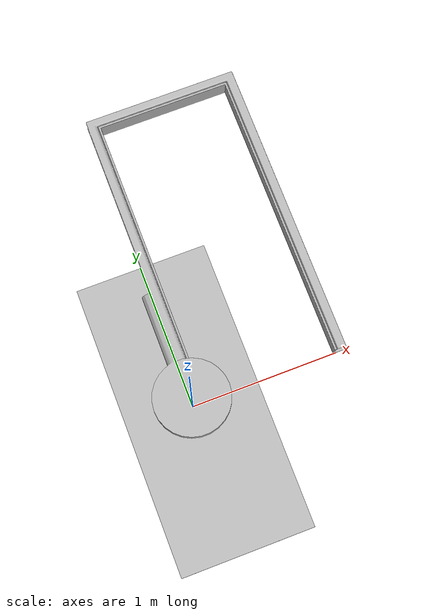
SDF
<sdf version="1.4">
  <model name="door">
    <pose>0 0 0 0 0 0</pose> <!-- Reset rotation -->

    <!-- Door frame -->
    <link name="door_frame">
      <inertial>
        <pose>0.525 1 0.05 0 0 0</pose>
        <mass>30.0</mass>
        <inertia>
          <ixx>1</ixx> <ixy>0.0</ixy> <ixz>0.0</ixz>
          <iyy>1</iyy> <iyz>0.0</iyz> <izz>1</izz>
        </inertia>
      </inertial>

      <visual name="visual_frame">
        <pose>0 0 0 0 0 0</pose>
        <geometry>
          <mesh>
            <uri>model://door/meshes/frame.stl</uri>
            <scale>0.1 0.1 0.1</scale>
          </mesh>
        </geometry>
      </visual>

      <collision name="collision_frame">
        <pose>0 0 0 0 0 0</pose>
        <geometry>
          <mesh>
            <uri>model://door/meshes/frame.stl</uri>
            <scale>0.1 0.1 0.1</scale>
          </mesh>
        </geometry>
      </collision>
    </link>

    <!-- Door body using box geometry -->
    <link name="door_body">
      <inertial>
        <pose>0 0 0 0 0 0</pose>
        <mass>1.0</mass>
        <inertia>
          <ixx>0.083</ixx> <ixy>0.0</ixy> <ixz>0.0</ixz>
          <iyy>0.083</iyy> <iyz>0.0</iyz> <izz>0.083</izz>
        </inertia>
      </inertial>

      <visual name="visual_door">
        <pose>0 0 0 0 0 0</pose>
        <geometry>
          <box>
            <size>0.9 1.99 0.03</size>
          </box>
        </geometry>
      </visual>

      <collision name="collision_door">
        <pose>0 0 0 0 0 0</pose>
        <geometry>
          <box>
            <size>0.9 1.99 0.03</size>
          </box>
        </geometry>
      </collision>
    </link>

    <!-- Door handle -->
    <link name="door_handle">
      <inertial>
        <pose>0 0 0 0 0 0</pose>
        <mass>1.0</mass>
        <inertia>
          <ixx>1</ixx> <ixy>0.0</ixy> <ixz>0.0</ixz>
          <iyy>1</iyy> <iyz>0.0</iyz> <izz>1</izz>
        </inertia>
      </inertial>

      <visual name="visual_handle">
        <pose>0 0 0 0 0 0</pose>
        <geometry>
          <mesh>
            <uri>model://door/meshes/handle.stl</uri>
            <scale>0.01 0.01 0.01</scale>
          </mesh>
        </geometry>
      </visual>

      <collision name="collision_handle">
        <pose>0 0 0 0 0 0</pose>
        <geometry>
          <mesh>
            <uri>model://door/meshes/handle.stl</uri>
            <scale>0.01 0.01 0.01</scale>
          </mesh>
        </geometry>
      </collision>
    </link>

    <!-- Fixed joint: attach frame to world -->
    <joint name="world_joint" type="fixed">
      <child>door_frame</child>
      <parent>world</parent>
    </joint>

    <!-- Revolute joint between frame and door panel -->
    <joint name="door_hinge" type="revolute">
      <parent>door_frame</parent>
      <child>door_body</child>
      <pose>0.5 0 1.0 0 0 0</pose> <!-- Left edge of door_body at middle height -->
      <axis>
        <xyz>0 1 0</xyz>
        <limit>
          <lower>-1.57</lower>
          <upper>1.57</upper>
        </limit>
        <dynamics>
          <damping>0.1</damping>
          <friction>0.1</friction>
        </dynamics>
      </axis>
    </joint>

    <!-- Revolute joint for rotating the handle -->
    <joint name="handle_joint" type="revolute">
      <parent>door_body</parent>
      <child>door_handle</child>
      <pose>0.45 0 1.0 0 0 0</pose> <!-- Right edge of door_body at center height -->
      <axis>
        <xyz>0 0 1</xyz>
        <limit>
          <lower>-0.5</lower>
          <upper>0.5</upper>
        </limit>
        <dynamics>
          <damping>0.1</damping>
        </dynamics>
      </axis>
    </joint>

  </model>
</sdf>
